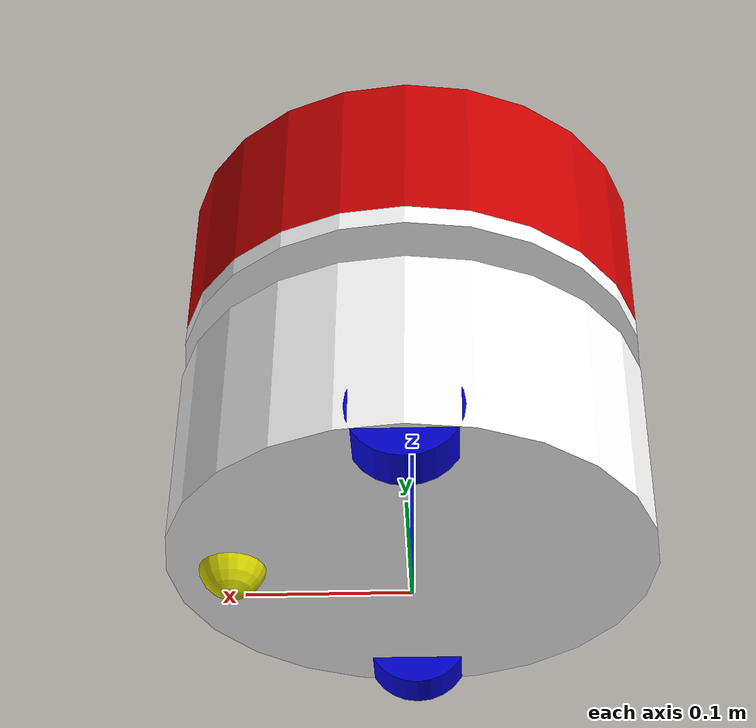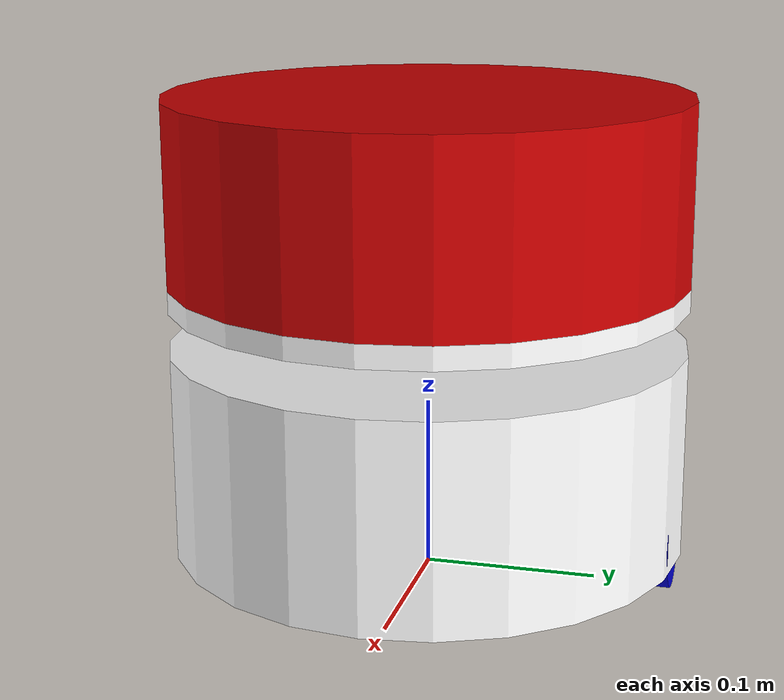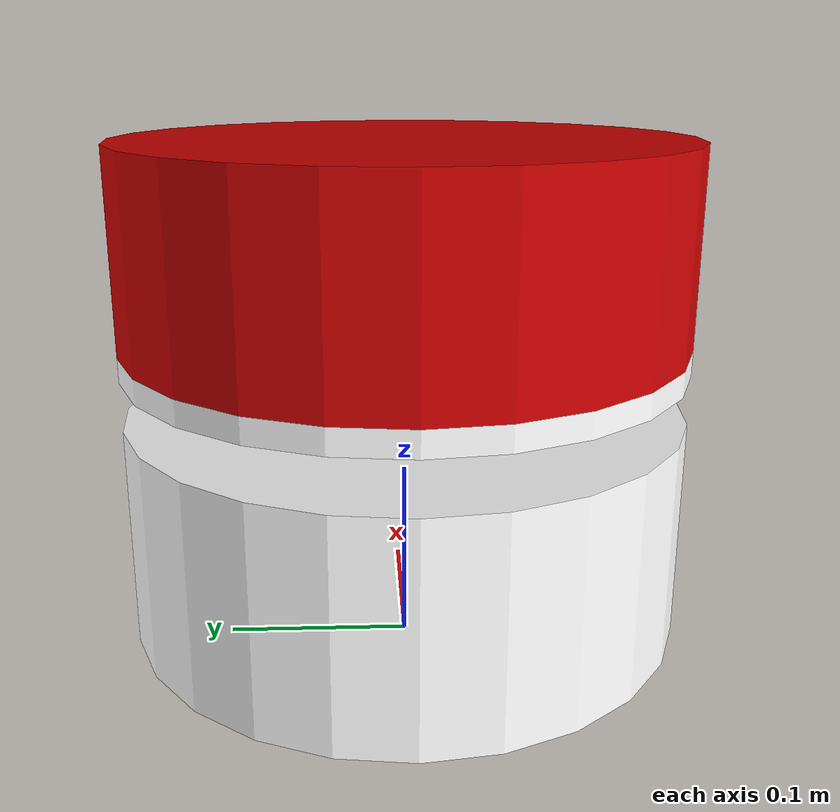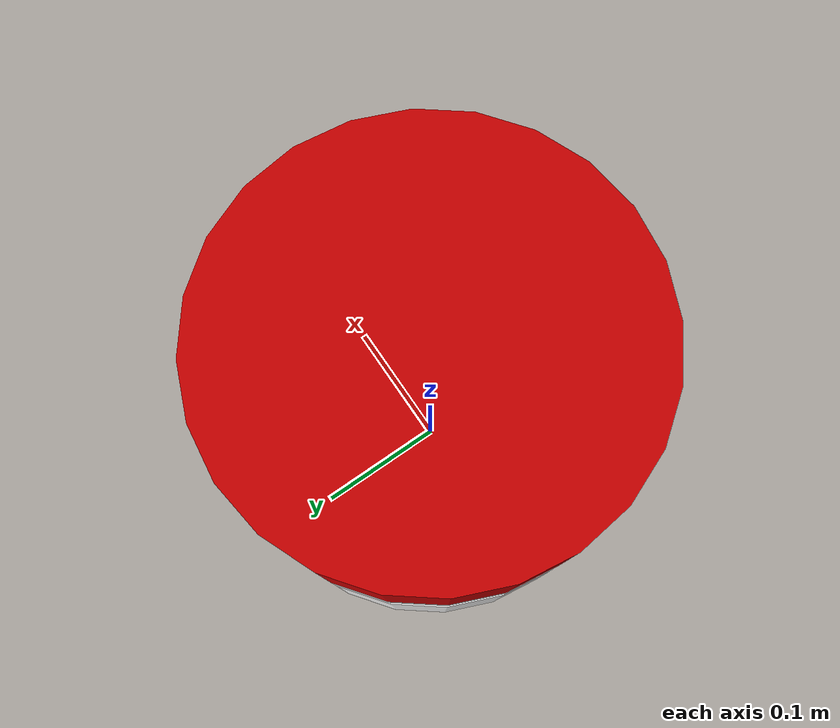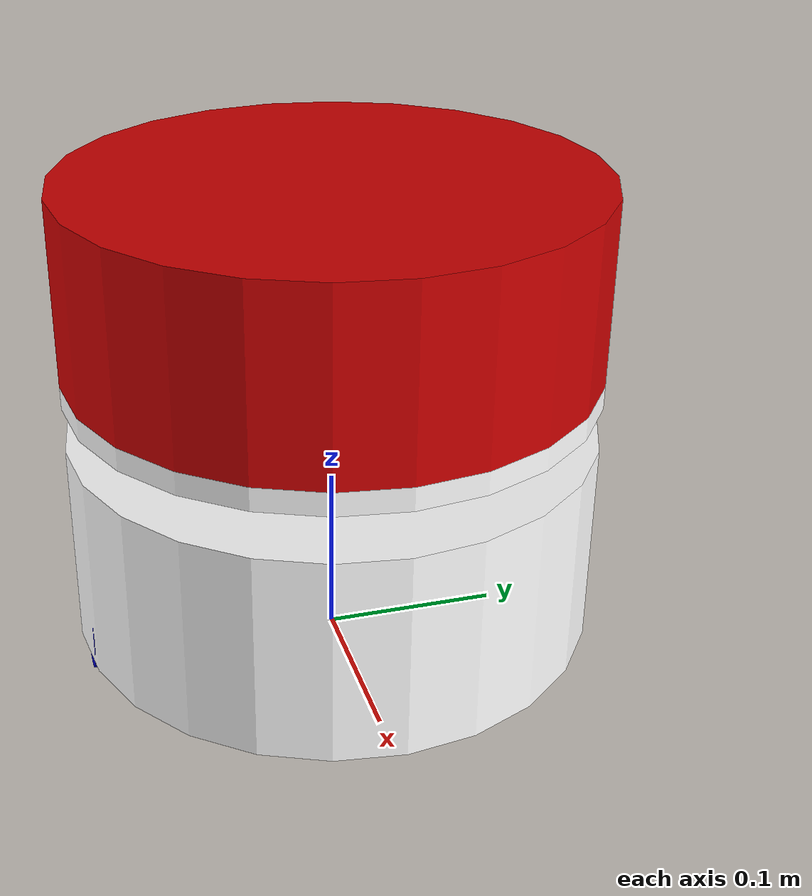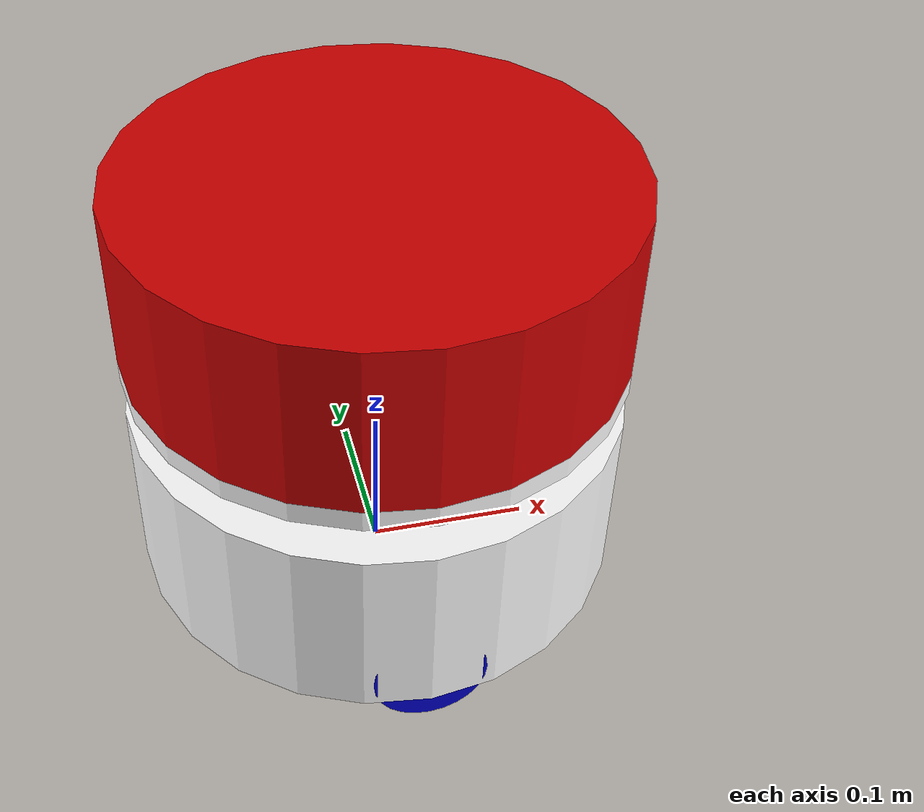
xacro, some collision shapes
<?xml version="1.0" ?>
<robot name="makerspet_snoopy" xmlns:xacro="http://ros.org/wiki/xacro">
  <!-- https://classic.gazebosim.org/tutorials?tut=ros_gzplugins&cat=connect_ros -->
  <!-- https://classic.gazebosim.org/tutorials?tut=ros_urdf&cat=connect_ros -->
  <!-- https://github.com/ROBOTIS-GIT/turtlebot3_simulations/blob/humble-devel/turtlebot3_gazebo/models/turtlebot3_waffle_pi/model.sdf -->
  <!-- https://github.com/ROBOTIS-GIT/turtlebot3/blob/humble-devel/turtlebot3_description/urdf/turtlebot3_waffle_pi.urdf -->

  <!-- ****************** ROBOT DIMENSIONS ****************** -->
  <!-- Units: meters, degrees, kg, N*m, m/s2 -->
  <xacro:property name="wheel_diameter" value="0.067"/>
  <xacro:property name="wheel_width" value="0.029"/>
  <xacro:property name="caster_diameter" value="0.042"/>
  <!-- Caster center to base edge -->
  <xacro:property name="caster_inset" value="0.0405"/>
  <xacro:property name="floor_clearance" value="0.018"/>
  <xacro:property name="base_diameter" value="0.300"/>
  <xacro:property name="wheel_base" value="0.262794"/>
  <xacro:property name="lower_cylinder_height" value="0.119"/>
  <xacro:property name="lower_to_upper_cylinders_gap" value="0.026"/>
  <xacro:property name="laser_puck_to_upper_cylinder_gap" value="0.005"/>
  <xacro:property name="laser_puck_diameter" value="0.0656"/>
  <xacro:property name="upper_cylinder_height" value="0.013"/>
  <xacro:property name="head_height" value="0.104"/>
  <xacro:property name="tablet_width" value="0.1669"/>
  <xacro:property name="tablet_height" value="0.0781"/>
  <xacro:property name="tablet_thickness" value="0.009"/>
  <!-- Zero - tablet faces straight forward -->
  <xacro:property name="tablet_pitch_angle" value="20"/>
  <!-- Upper cylinder's front to tablet bottom's center -->
  <xacro:property name="tablet_inset" value="0.0355"/>
  <xacro:property name="color_camera_diameter" value="0.004"/>
  <!-- Tablet edge to camera center -->
  <xacro:property name="color_camera_inset" value="0.008"/>
  <!-- Delta xyz from tablet center -->
  <xacro:property name="imu_joint_dx" value="0"/>
  <xacro:property name="imu_joint_dy" value="0"/>
  <xacro:property name="imu_joint_dz" value="0"/>
  <!-- imu_joint_rpy: [0.0, 0.0, 0.0] -->

  <xacro:property name="motor_stall_torque" value="0.49"/>
  <xacro:property name="max_wheel_acceleration" value="5"/>
  <xacro:property name="lower_cylinder_mass" value="0.500"/>
  <!-- caster and battery weight -->
  <xacro:property name="caster_mass" value="0.120"/>
  <xacro:property name="wheel_mass" value="0.050"/>
  <xacro:property name="laser_puck_mass" value="0.200"/>
  <xacro:property name="upper_cylinder_mass" value="0.100"/>
  <xacro:property name="head_mass" value="0.200"/>
  <xacro:property name="tablet_mass" value="0.200"/>

  <xacro:property name="DEG2RAD" value="0.0174533"/>
  <xacro:property name="color_camera_thickness" value="0.0001"/>
  <xacro:property name="imu_xlen" value="0.001"/>
  <xacro:property name="imu_ylen" value="0.002"/>
  <xacro:property name="imu_zlen" value="0.004"/>

  <material name="black">
      <color rgba="0 0 0 1.0"/>
  </material>

  <material name="dark">
    <color rgba="0.3 0.3 0.3 1.0"/>
  </material>

  <material name="light_black">
    <color rgba="0.4 0.4 0.4 1.0"/>
  </material>

  <material name="blue">
    <color rgba="0 0 0.8 1.0"/>
  </material>

  <material name="green">
    <color rgba="0 0.8 0 1.0"/>
  </material>

  <material name="grey">
    <color rgba="0.5 0.5 0.5 1.0"/>
  </material>

  <material name="orange">
    <color rgba="1.0 0.4235 0.0392 1.0"/>
  </material>

  <material name="brown">
    <color rgba="0.8706 0.8118 0.7647 1.0"/>
  </material>

  <material name="red">
    <color rgba="0.8 0 0 1.0"/>
  </material>

  <material name="yellow">
    <color rgba="0.8 0.8 0 1.0"/>
  </material>

  <material name="white">
    <color rgba="1.0 1.0 1.0 1.0"/>
  </material>

  <xacro:macro name="solid_box_inertia" params="m x y z">
    <inertial>
      <origin xyz="0 0 0" rpy="${pi/2} 0 ${pi/2}"/>
      <mass value="${m}"/>
      <inertia ixx="${m*(y*y+z*z)/12}" ixy="0" ixz="0" iyy="${m*(x*x+z*z)/12}" iyz="0" izz="${m*(x*x+y*y)/12}"/>
    </inertial>
  </xacro:macro>

  <xacro:macro name="solid_cylinder_inertia" params="m r h">
    <inertial>
      <origin xyz="0 0 0" rpy="${pi/2} 0 0" />
      <mass value="${m}"/>
      <inertia ixx="${m*(3*r*r+h*h)/12}" ixy="0" ixz="0" iyy="${m*(3*r*r+h*h)/12}" iyz="0" izz="${m*r*r/2}"/>
    </inertial>
  </xacro:macro>

  <xacro:macro name="hollow_cylinder_inertia" params="m ri ro h">
    <inertial>
      <origin xyz="0 0 0" rpy="${pi/2} 0 0" />
      <mass value="${m}"/>
      <inertia ixx="${m*(3*(ri*ri+ro*ro)+h*h)/12}" ixy="0" ixz="0" iyy="${m*(3*(ri*ri+ro*ro) + h*h)/12}" iyz="0" izz="${m*(ri*ri+ro*ro)/2}"/>
    </inertial>
  </xacro:macro>

  <xacro:macro name="thin_cylindrical_shell_inertia" params="m r h">
    <inertial>
      <origin xyz="0 0 0" rpy="${pi/2} 0 0" />
      <mass value="${m}"/>
      <inertia ixx="${m*(6*r*r+h*h)/12}" ixy="0" ixz="0" iyy="${m*(6*r*r+h*h)/12}" iyz="0" izz="${m*r*r}"/>
    </inertial>
  </xacro:macro>

  <xacro:macro name="solid_sphere_inertia" params="m r">
    <inertial>
      <mass value="${m}"/>
      <inertia ixx="${2*m*r*r/5}" ixy="0" ixz="0" iyy="${2*m*r*r/5}" iyz="0" izz="${2*m*r*r/5}"/>
    </inertial>
  </xacro:macro>

  <xacro:macro name="thin_spherical_shell_inertia" params="m r">
    <inertial>
      <mass value="${m}"/>
      <inertia ixx="${2*m*r*r/3}" ixy="0" ixz="0" iyy="${2*m*r*r/3}" iyz="0" izz="${2*m*r*r/3}"/>
    </inertial>
  </xacro:macro>

  <xacro:macro name="solid_hemisphere_inertia" params="m r">
    <inertial>
      <mass value="${m}"/>
      <inertia ixx="${83*m*r*r/320}" ixy="0" ixz="0" iyy="${83*m*r*r/320}" iyz="0" izz="${2*m*r*r/5}"/>
    </inertial>
  </xacro:macro>

  <xacro:macro name="solid_ellipsoid_inertia" params="m x y z">
    <inertial>
      <mass value="${m}"/>
      <inertia ixx="${m*(y*y+z*z)/5}" ixy="0" ixz="0" iyy="${m*(x*x+z*z)/5}" iyz="0" izz="${m*(x*x+y*y)/5}"/>
    </inertial>
  </xacro:macro>

  <xacro:macro name="solid_semi_ellipsoid_inertia" params="m x y z">
    <inertial>
      <mass value="${m}"/>
      <inertia ixx="${m*(y*y+z*z)/10}" ixy="0" ixz="0" iyy="${m*(x*x+z*z)/10}" iyz="0" izz="${m*(x*x+y*y)/10}"/>
    </inertial>
  </xacro:macro>

  <link name="base_footprint"/>

  <joint name="base_joint" type="fixed">
    <parent link="base_footprint"/>
    <child link="base_link"/>
    <origin xyz="0 0 ${floor_clearance}" rpy="0 0 0"/>
  </joint>

  <link name="base_link">
    <visual>
      <origin xyz="0 0 ${lower_cylinder_height/2}" rpy="0 0 0"/>
      <geometry>
        <cylinder length="${lower_cylinder_height}" radius="${base_diameter/2}"/>
      </geometry>
      <material name="white"/>
    </visual>

    <collision>
      <origin xyz="0 0 ${lower_cylinder_height/2}" rpy="0 0 0"/>
      <geometry>
        <cylinder length="${lower_cylinder_height}" radius="${base_diameter/2}"/>
      </geometry>
    </collision>

    <xacro:solid_cylinder_inertia m="${lower_cylinder_mass}" r="${base_diameter/2}" h="${lower_cylinder_height}"/>
  </link>

  <joint name="caster_joint" type="fixed">
    <parent link="base_link"/>
    <child link="caster_link"/>
    <origin xyz="${base_diameter/2-caster_inset} 0 ${caster_diameter/2-floor_clearance}" rpy="0 0 0"/>
  </joint>

  <link name="caster_link">
    <visual>
      <origin xyz="0 0 0" rpy="0 0 0"/>
      <geometry>
        <sphere radius="${caster_diameter/2}"/>
      </geometry>
      <material name="yellow"/>
    </visual>

   <collision>
      <origin xyz="0 0 0" rpy="0 0 0"/>
      <geometry>
        <sphere radius="${caster_diameter/2}"/>
      </geometry>
    </collision>

    <xacro:solid_sphere_inertia m="${caster_mass}" r="${caster_diameter/2}"/>
  </link>

  <joint name="wheel_left_joint" type="continuous">
    <parent link="base_link"/>
    <child link="wheel_left_link"/>
    <origin xyz="0 ${wheel_base/2} ${wheel_diameter/2-floor_clearance}" rpy="-${pi/2} 0 0"/>
    <axis xyz="0 0 1"/>
  </joint>

  <link name="wheel_left_link">
    <visual>
      <origin xyz="0 0 0" rpy="0 0 0"/>
      <geometry>
        <cylinder length="${wheel_width}" radius="${wheel_diameter/2}"/>
      </geometry>
      <material name="blue"/>
    </visual>

    <collision>
      <origin xyz="0 0 0" rpy="0 0 0"/>
      <geometry>
        <cylinder length="${wheel_width}" radius="${wheel_diameter/2}"/>
      </geometry>
    </collision>

    <xacro:solid_cylinder_inertia m="${wheel_mass}" r="${wheel_diameter/2}" h="${wheel_width}"/>
  </link>

  <joint name="wheel_right_joint" type="continuous">
    <parent link="base_link"/>
    <child link="wheel_right_link"/>
    <origin xyz="0 ${-wheel_base/2} ${wheel_diameter/2-floor_clearance}" rpy="-${pi/2} 0 0"/>
    <axis xyz="0 0 1"/>
  </joint>

  <link name="wheel_right_link">
    <visual>
      <origin xyz="0 0 0" rpy="0 0 0"/>
      <geometry>
        <cylinder length="${wheel_width}" radius="${wheel_diameter/2}"/>
      </geometry>
      <material name="blue"/>
    </visual>

    <collision>
      <origin xyz="0 0 0" rpy="0 0 0"/>
      <geometry>
        <cylinder length="${wheel_width}" radius="${wheel_diameter/2}"/>
      </geometry>
    </collision>

    <xacro:solid_cylinder_inertia m="${wheel_mass}" r="${wheel_diameter/2}" h="${wheel_width}"/>
  </link>

  <joint name="scan_joint" type="fixed">
    <parent link="base_link"/>
    <child link="base_scan"/>
    <origin xyz="0 0 ${lower_cylinder_height + (lower_to_upper_cylinders_gap - laser_puck_to_upper_cylinder_gap)/2}" rpy="-${pi} 0 0"/>
  </joint>

  <link name="base_scan">
    <visual>
      <origin xyz="0 0 0" rpy="0 0 0"/>
      <geometry>
        <cylinder length="${lower_to_upper_cylinders_gap - laser_puck_to_upper_cylinder_gap}" radius="${laser_puck_diameter/2}"/>
      </geometry>
      <material name="blue"/>
    </visual>

    <collision>
      <origin xyz="0 0 0" rpy="0 0 0"/>
      <geometry>
        <cylinder length="${lower_to_upper_cylinders_gap - laser_puck_to_upper_cylinder_gap}" radius="${laser_puck_diameter/2}"/>
      </geometry>
    </collision>

    <xacro:solid_cylinder_inertia m="${laser_puck_mass}" r="${laser_puck_diameter/2}" h="${lower_to_upper_cylinders_gap - laser_puck_to_upper_cylinder_gap}"/>
  </link>

  <joint name="base_upper_joint" type="fixed">
    <parent link="base_link"/>
    <child link="base_upper_link"/>
    <origin xyz="0 0 ${lower_cylinder_height + lower_to_upper_cylinders_gap}" rpy="0 0 0"/>
  </joint>

  <link name="base_upper_link">
    <visual>
      <origin xyz="0 0 ${upper_cylinder_height/2}" rpy="0 0 0"/>
      <geometry>
        <cylinder length="${upper_cylinder_height}" radius="${base_diameter/2}"/>
      </geometry>
      <material name="white"/>
    </visual>

    <collision>
      <origin xyz="0 0 ${upper_cylinder_height/2}" rpy="0 0 0"/>
      <geometry>
        <cylinder length="${upper_cylinder_height}" radius="${base_diameter/2}"/>
      </geometry>
    </collision>

    <xacro:solid_cylinder_inertia m="${upper_cylinder_mass}" r="${base_diameter/2}" h="${upper_cylinder_height}"/>
  </link>

  <joint name="head_joint" type="fixed">
    <parent link="base_upper_link"/>
    <child link="head_link"/>
    <origin xyz="0 0 ${upper_cylinder_height}" rpy="0 0 0"/>
  </joint>

  <link name="head_link">
    <visual>
      <origin xyz="0 0 0" rpy="0 0 0"/>
      <geometry>
        <mesh filename="package://makerspet_snoopy/mesh/head.stl" scale="${0.001*base_diameter} ${0.001*base_diameter} ${0.001*head_height*2}"/>
      </geometry>
      <material name="red"/>
    </visual>

    <collision>
      <origin xyz="0 0 ${head_height/2}" rpy="0 0 0"/>
      <geometry>
        <cylinder length="${head_height}" radius="${base_diameter/2}"/>
      </geometry>
    </collision>

    <xacro:solid_semi_ellipsoid_inertia m="${head_mass}" x="${base_diameter/2}" y="${base_diameter/2}" z="${head_height}"/>
  </link>

  <joint name="tablet_joint" type="fixed">
    <parent link="head_link"/>
    <child link="tablet_link"/>
    <origin xyz="${base_diameter/2 - tablet_inset} 0 0" rpy="0 ${-tablet_pitch_angle*DEG2RAD} 0"/>
  </joint>

  <link name="tablet_link">
    <visual>
      <origin xyz="0 0 ${tablet_height/2}" rpy="${pi/2} 0 ${pi/2}"/>
      <geometry>
        <box size="${tablet_width} ${tablet_height} ${tablet_thickness}"/>
      </geometry>
      <material name="light_black"/>
    </visual>

   <collision>
      <origin xyz="0 0 ${tablet_height/2}" rpy="${pi/2} 0 ${pi/2}"/>
      <origin xyz="0 0 0.03905" rpy="${pi/2} 0 ${pi/2}"/>
      <geometry>
        <box size="${tablet_width} ${tablet_height} ${tablet_thickness}"/>
      </geometry>
    </collision>

    <xacro:solid_box_inertia m="${tablet_mass}" x="${tablet_width}" y="${tablet_height}" z="${tablet_thickness}"/>
  </link>

  <joint name="color_camera_joint" type="fixed">
    <parent link="tablet_link"/>
    <child link="color_camera_link"/>
    <origin xyz="${tablet_thickness/2-color_camera_thickness} ${color_camera_inset - tablet_width/2} ${tablet_height/2}" rpy="0 0 0"/>
  </joint>

  <link name="color_camera_link">
    <visual>
      <origin xyz="0 0 0" rpy="0 ${pi/2} 0"/>
      <geometry>
        <cylinder length="${color_camera_thickness}" radius="${color_camera_diameter/2}"/>
      </geometry>
      <material name="white"/>
    </visual>
  </link>

  <joint name="imu_joint" type="fixed">
    <parent link="tablet_link"/>
    <child link="imu_link"/>
    <origin xyz="${imu_joint_dx} ${imu_joint_dy} ${imu_joint_dz+tablet_height/2}" rpy="0 0 0"/>
  </joint>

  <link name="imu_link">
    <visual>
      <origin xyz="0 0 0" rpy="0 0 0"/>
      <geometry>
        <box size="${imu_xlen} ${imu_ylen} ${imu_zlen}"/>
      </geometry>
      <material name="black"/>
    </visual>
  </link>

  <gazebo reference="color_camera_link">
    <sensor type="camera" name="color_camera">
      <always_on>true</always_on>
      <visualize>false</visualize>
      <update_rate>15.0</update_rate>
      <camera name="front_color_camera">
        <horizontal_fov>1.3962634</horizontal_fov>
        <image>
          <width>720</width>
          <height>480</height>
          <format>R8G8B8</format>
        </image>
        <clip>
          <near>0.02</near>
          <far>300</far>
        </clip>
        <noise>
          <type>gaussian</type>
          <mean>0.0</mean>
          <stddev>0.007</stddev>
        </noise>
      </camera>
      <plugin name="color_camera_plugin" filename="libgazebo_ros_camera.so">
        <!-- ros -->
          <!-- remapping -->
          <!-- namespace -->
        <!-- /ros -->

      </plugin>
    </sensor>
  </gazebo>

  <gazebo>
    <plugin name="differential_drive_plugin" filename="libgazebo_ros_diff_drive.so">

      <!-- /opt/ros/humble/share/gazebo_plugins/worlds/gazebo_ros_diff_drive_demo.world -->
      <!-- https://github.com/ros-simulation/gazebo_ros_pkgs/blob/foxy/gazebo_plugins/src/gazebo_ros_diff_drive.cpp -->

      <!-- ros -->
        <!-- remapping -->
        <!-- namespace -->
      <!-- /ros -->

      <update_rate>30</update_rate>

      <left_joint>wheel_left_joint</left_joint>
      <right_joint>wheel_right_joint</right_joint>

      <wheel_separation>${wheel_base}</wheel_separation>
      <wheel_diameter>${wheel_diameter}</wheel_diameter>

      <max_wheel_torque>${motor_stall_torque}</max_wheel_torque>
      <max_wheel_acceleration>${max_wheel_acceleration}</max_wheel_acceleration>

      <command_topic>cmd_vel</command_topic>

      <publish_odom>true</publish_odom>
      <publish_odom_tf>true</publish_odom_tf>
      <publish_wheel_tf>false</publish_wheel_tf>

      <odometry_topic>odom</odometry_topic>
      <odometry_frame>odom</odometry_frame>
      <robot_base_frame>base_footprint</robot_base_frame>
    </plugin>
  </gazebo>

  <gazebo>
    <plugin name="joint_state_plugin" filename="libgazebo_ros_joint_state_publisher.so">
      <!-- https://github.com/ros-simulation/gazebo_ros_pkgs/blob/foxy/gazebo_plugins/src/gazebo_ros_joint_state_publisher.cpp -->
      <ros>
        <!-- namespace -->
        <remapping>~/out:=joint_states</remapping>
      </ros>
      <update_rate>30</update_rate>
      <joint_name>wheel_left_joint</joint_name>
      <joint_name>wheel_right_joint</joint_name>
    </plugin>
  </gazebo>

  <gazebo reference="base_scan">
    <sensor type="ray" name="laser_scan_sensor">
      <visualize>false</visualize>
      <always_on>true</always_on>
      <update_rate>9</update_rate>
      <ray>
        <scan>
          <horizontal>
            <samples>360</samples>
            <resolution>1</resolution>
            <min_angle>0</min_angle>
            <max_angle>${2*pi}</max_angle>
          </horizontal>
        </scan>
        <range>
          <min>0.1</min>
          <max>12.0</max>
          <resolution>0.02</resolution>
        </range>
        <noise>
          <type>gaussian</type>
          <mean>0.0</mean>
          <stddev>0.01</stddev>
        </noise>
      </ray>
      <plugin name="laser_scan_plugin" filename="libgazebo_ros_ray_sensor.so">
        <!-- https://github.com/ros-simulation/gazebo_ros_pkgs/blob/foxy/gazebo_plugins/src/gazebo_ros_ray_sensor.cpp -->
        <ros>
          <!-- namespace -->
          <remapping>~/out:=scan</remapping>
        </ros>
        <output_type>sensor_msgs/LaserScan</output_type>
        <frame_name>base_scan</frame_name>
      </plugin>
    </sensor>
  </gazebo>

  <gazebo reference="imu_link">
    <gravity>true</gravity>
    <sensor name="imu_sensor" type="imu">
      <always_on>true</always_on>
      <update_rate>100</update_rate>

      <imu>
        <angular_velocity>
          <x>
            <noise type="gaussian">
              <mean>0.0</mean>
              <stddev>2e-4</stddev>
            </noise>
          </x>
          <y>
            <noise type="gaussian">
              <mean>0.0</mean>
              <stddev>2e-4</stddev>
            </noise>
          </y>
          <z>
            <noise type="gaussian">
              <mean>0.0</mean>
              <stddev>2e-4</stddev>
            </noise>
          </z>
        </angular_velocity>
        <linear_acceleration>
          <x>
            <noise type="gaussian">
              <mean>0.0</mean>
              <stddev>1.7e-2</stddev>
            </noise>
          </x>
          <y>
            <noise type="gaussian">
              <mean>0.0</mean>
              <stddev>1.7e-2</stddev>
            </noise>
          </y>
          <z>
            <noise type="gaussian">
              <mean>0.0</mean>
              <stddev>1.7e-2</stddev>
            </noise>
          </z>
        </linear_acceleration>
      </imu>

      <!-- https://github.com/ros-simulation/gazebo_ros_pkgs/blob/foxy/gazebo_plugins/src/gazebo_ros_imu_sensor.cpp -->
      <plugin filename="libgazebo_ros_imu_sensor.so" name="imu_plugin">
        <ros>
          <remapping>~/out:=imu</remapping>
        </ros>
      </plugin>
    </sensor>
  </gazebo>

  <gazebo reference="wheel_left_link">
    <mu1>0.2</mu1>
    <mu2>0.2</mu2>
    <material>Gazebo/Blue</material>

    <!-- Turtlebot3 SDF -->
  </gazebo>

  <gazebo reference="wheel_right_link">
    <mu1>0.2</mu1>
    <mu2>0.2</mu2>
    <material>Gazebo/Blue</material>
  </gazebo>

  <gazebo reference="caster_link">
    <mu1>0.2</mu1>
    <mu2>0.2</mu2>
    <material>Gazebo/Yellow</material>
  </gazebo>

  <gazebo reference="head_link">
    <material>Gazebo/Red</material>
  </gazebo>

  <gazebo reference="base_link">
    <material>Gazebo/White</material>
  </gazebo>

  <gazebo reference="base_upper_link">
    <material>Gazebo/White</material>
  </gazebo>
</robot>
